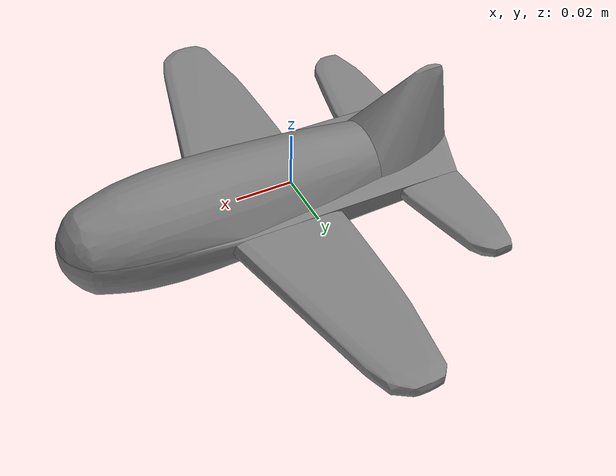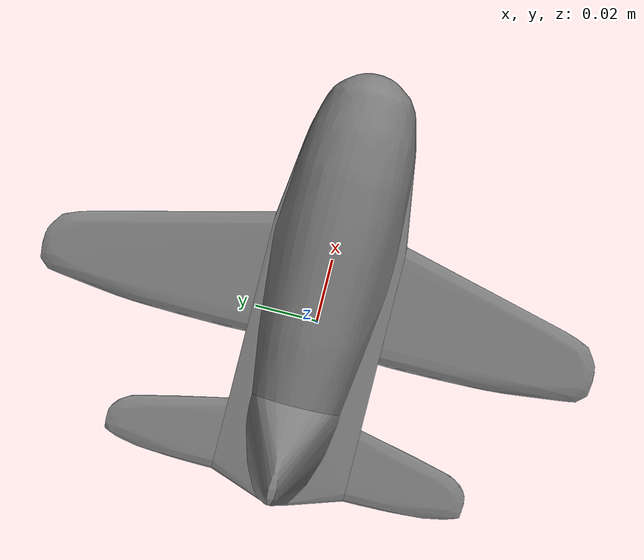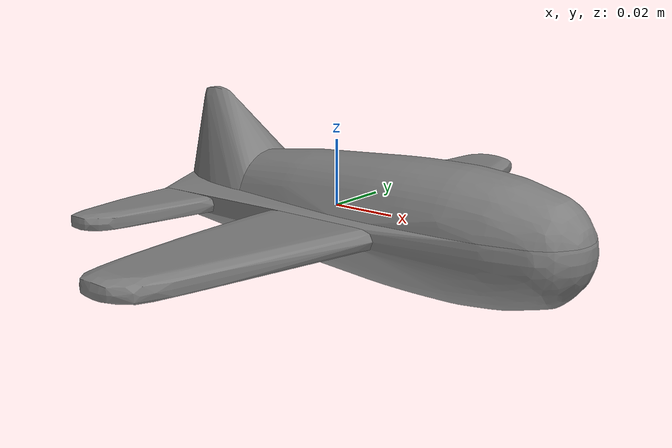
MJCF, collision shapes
<mujoco model="airplane">
  <compiler meshdir="."/>

  <asset>
    <mesh name="airplane" file="airplane.stl"/>
    <mesh name="airplane_collision_hull_000" file="airplane_collision_hull_000.stl"/>
    <mesh name="airplane_collision_hull_001" file="airplane_collision_hull_001.stl"/>
    <mesh name="airplane_collision_hull_002" file="airplane_collision_hull_002.stl"/>
    <mesh name="airplane_collision_hull_003" file="airplane_collision_hull_003.stl"/>
    <mesh name="airplane_collision_hull_004" file="airplane_collision_hull_004.stl"/>
    <mesh name="airplane_collision_hull_005" file="airplane_collision_hull_005.stl"/>
    <mesh name="airplane_collision_hull_006" file="airplane_collision_hull_006.stl"/>
  </asset>

  <worldbody>
    <body name="object">
      <freejoint name="object_joint"/>
      <geom name="object_visual" type="mesh" mesh="airplane"
            contype="0" conaffinity="0" group="2" rgba="0.9 0.9 0.8 1" mass="0"/>
      <geom name="airplane_collision_hull_000_collision" type="mesh" mesh="airplane_collision_hull_000"
            mass="0.0071" condim="6" friction="1.0 0.002 0.002" priority="1"/>
      <geom name="airplane_collision_hull_001_collision" type="mesh" mesh="airplane_collision_hull_001"
            mass="0.0071" condim="6" friction="1.0 0.002 0.002" priority="1"/>
      <geom name="airplane_collision_hull_002_collision" type="mesh" mesh="airplane_collision_hull_002"
            mass="0.0071" condim="6" friction="1.0 0.002 0.002" priority="1"/>
      <geom name="airplane_collision_hull_003_collision" type="mesh" mesh="airplane_collision_hull_003"
            mass="0.0071" condim="6" friction="1.0 0.002 0.002" priority="1"/>
      <geom name="airplane_collision_hull_004_collision" type="mesh" mesh="airplane_collision_hull_004"
            mass="0.0071" condim="6" friction="1.0 0.002 0.002" priority="1"/>
      <geom name="airplane_collision_hull_005_collision" type="mesh" mesh="airplane_collision_hull_005"
            mass="0.0071" condim="6" friction="1.0 0.002 0.002" priority="1"/>
      <geom name="airplane_collision_hull_006_collision" type="mesh" mesh="airplane_collision_hull_006"
            mass="0.0071" condim="6" friction="1.0 0.002 0.002" priority="1"/>
    </body>
  </worldbody>
</mujoco>
